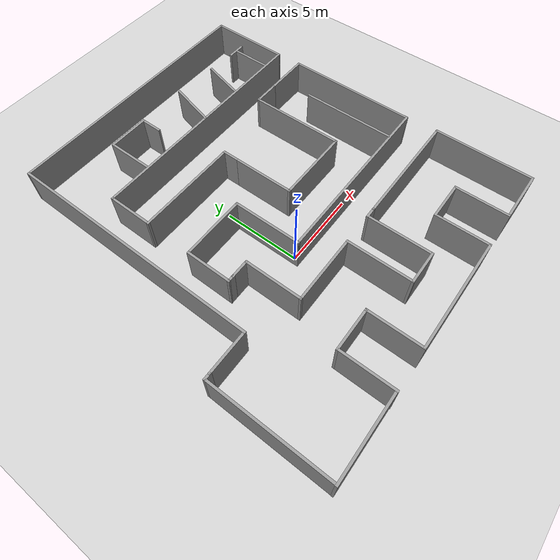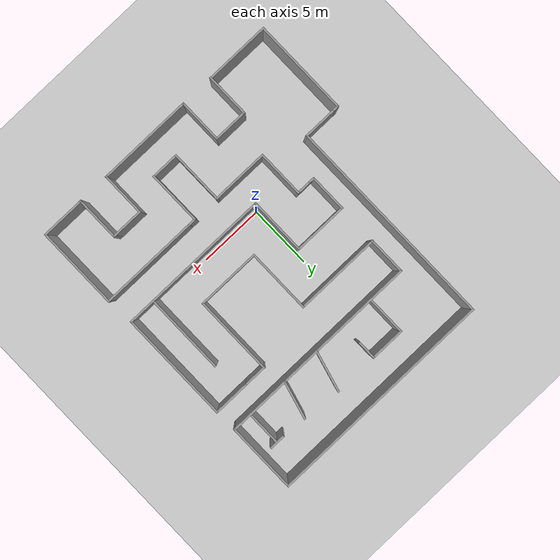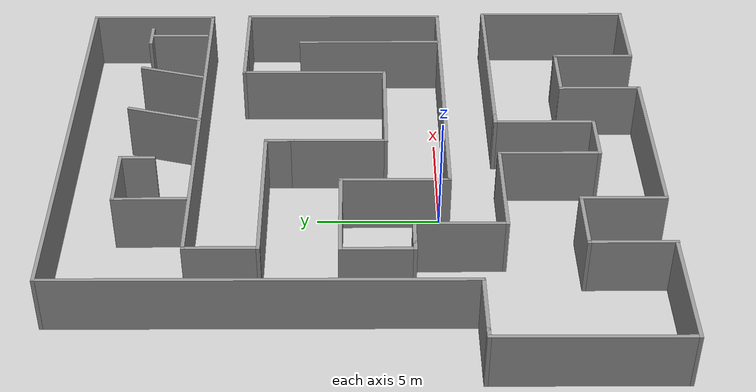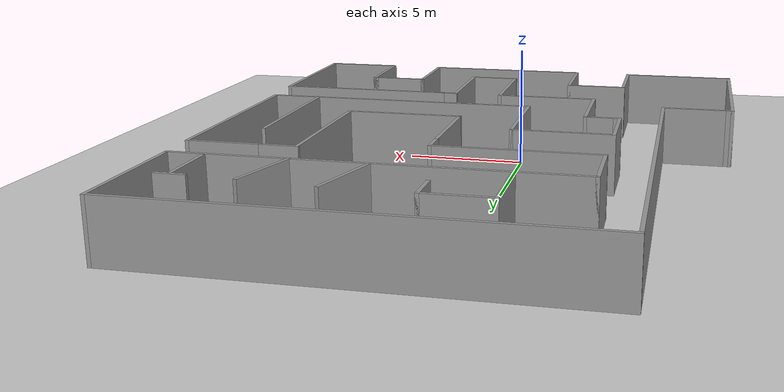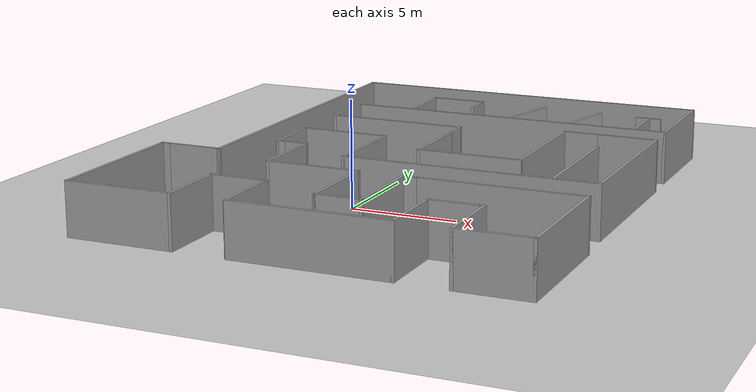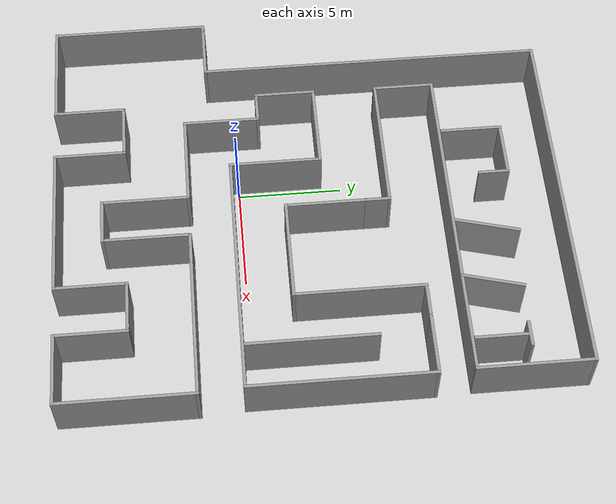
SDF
<sdf version="1.6">
 <world name="default">
  <plugin name="gazebo_occupancy_map" filename="libgazebo_2Dmap_plugin.so">
   <map_resolution>0.1</map_resolution>
   <map_height>0.3</map_height>
   <map_size_x>25</map_size_x>
   <map_size_y>25</map_size_y>
   <init_robot_x>0</init_robot_x>
   <init_robot_y>0</init_robot_y>
  </plugin>
  <light name="sun" type="directional">
   <pose>0 0 10 0 -0 0</pose>
   <diffuse>0.8 0.8 0.8 1</diffuse>
   <specular>0.2 0.2 0.2 1</specular>
   <attenuation>
    <range>1000</range>
    <constant>0.9</constant>
    <linear>0.01</linear>
    <quadratic>0.001</quadratic>
   </attenuation>
   <direction>-0.5 0.1 -0.9</direction>
  </light>
  <model name="ground_plane">
   <static>1</static>
   <link name="link">
    <collision name="collision">
     <geometry><plane><normal>0 0 1</normal><size>100 100</size></plane></geometry>
     <surface><friction><ode><mu>100</mu><mu2>50</mu2></ode></friction></surface>
    </collision>
    <visual name="visual">
     <cast_shadows>0</cast_shadows>
     <geometry><plane><normal>0 0 1</normal><size>100 100</size></plane></geometry>
     <material>
      <script><uri>file://media/materials/scripts/gazebo.material</uri><name>Gazebo/Grey</name></script>
     </material>
    </visual>
   </link>
  </model>
  <gravity>0 0 -9.8</gravity>
  <magnetic_field>6e-06 2.3e-05 -4.2e-05</magnetic_field>
  <atmosphere type="adiabatic"/>
  <physics name="default_physics" default="0" type="ode">
   <max_step_size>0.001</max_step_size>
   <real_time_factor>1</real_time_factor>
   <real_time_update_rate>1000</real_time_update_rate>
  </physics>
  <scene><ambient>0.4 0.4 0.4 1</ambient><background>0.7 0.7 0.7 1</background><shadows>1</shadows></scene>
  <audio><device>default</device></audio>
  <spherical_coordinates>
   <surface_model>EARTH_WGS84</surface_model>
   <latitude_deg>0</latitude_deg>
   <longitude_deg>0</longitude_deg>
   <elevation>0</elevation>
   <heading_deg>0</heading_deg>
  </spherical_coordinates>
  <model name="narrow">
   <pose>1.3601 3.26352 0 0 -0 0</pose>
   <link name="Wall_0">
    <collision name="Wall_0_Collision">
     <geometry><box><size>5.05 0.15 2.5</size></box></geometry>
     <pose>0 0 1.25 0 -0 0</pose>
    </collision>
    <visual name="Wall_0_Visual">
     <pose>0 0 1.25 0 -0 0</pose>
     <geometry><box><size>5.05 0.15 2.5</size></box></geometry>
     <material>
      <script><uri>file://media/materials/scripts/gazebo.material</uri><name>Gazebo/Grey</name></script>
      <ambient>1 1 1 1</ambient>
     </material>
     <meta><layer>0</layer></meta>
    </visual>
    <pose>-7.9311 -12.0265 0 0 -0 0</pose>
   </link>
   <link name="Wall_10">
    <collision name="Wall_10_Collision">
     <geometry><box><size>3.5 0.15 2.5</size></box></geometry>
     <pose>0 0 1.25 0 -0 0</pose>
    </collision>
    <visual name="Wall_10_Visual">
     <pose>0 0 1.25 0 -0 0</pose>
     <geometry><box><size>3.5 0.15 2.5</size></box></geometry>
     <material>
      <script><uri>file://media/materials/scripts/gazebo.material</uri><name>Gazebo/Grey</name></script>
      <ambient>1 1 1 1</ambient>
     </material>
     <meta><layer>0</layer></meta>
    </visual>
    <pose>8.7061 -12.05 0 0 -0 0</pose>
   </link>
   <link name="Wall_11">
    <collision name="Wall_11_Collision">
     <geometry><box><size>6.5 0.15 2.5</size></box></geometry>
     <pose>0 0 1.25 0 -0 0</pose>
    </collision>
    <visual name="Wall_11_Visual">
     <pose>0 0 1.25 0 -0 0</pose>
     <geometry><box><size>6.5 0.15 2.5</size></box></geometry>
     <material>
      <script><uri>file://media/materials/scripts/gazebo.material</uri><name>Gazebo/Grey</name></script>
      <ambient>1 1 1 1</ambient>
     </material>
     <meta><layer>0</layer></meta>
    </visual>
    <pose>10.3811 -8.875 0 0 -0 1.5708</pose>
   </link>
   <link name="Wall_12">
    <collision name="Wall_12_Collision">
     <geometry><box><size>7.75 0.15 2.5</size></box></geometry>
     <pose>0 0 1.25 0 -0 0</pose>
    </collision>
    <visual name="Wall_12_Visual">
     <pose>0 0 1.25 0 -0 0</pose>
     <geometry><box><size>7.75 0.15 2.5</size></box></geometry>
     <material>
      <script><uri>file://media/materials/scripts/gazebo.material</uri><name>Gazebo/Grey</name></script>
      <ambient>1 1 1 1</ambient>
     </material>
     <meta><layer>0</layer></meta>
    </visual>
    <pose>6.5811 -5.7 0 0 -0 3.14159</pose>
   </link>
   <link name="Wall_13">
    <collision name="Wall_13_Collision">
     <geometry><box><size>0.75 0.15 2.5</size></box></geometry>
     <pose>0 0 1.25 0 -0 0</pose>
    </collision>
    <visual name="Wall_13_Visual">
     <pose>0 0 1.25 0 -0 0</pose>
     <geometry><box><size>0.75 0.15 2.5</size></box></geometry>
     <material>
      <script><uri>file://media/materials/scripts/gazebo.material</uri><name>Gazebo/Grey</name></script>
      <ambient>1 1 1 1</ambient>
     </material>
     <meta><layer>0</layer></meta>
    </visual>
    <pose>2.4811 -5.7 0 0 -0 3.14159</pose>
   </link>
   <link name="Wall_14">
    <collision name="Wall_14_Collision">
     <geometry><box><size>4.25 0.15 2.5</size></box></geometry>
     <pose>0 0 1.25 0 -0 0</pose>
    </collision>
    <visual name="Wall_14_Visual">
     <pose>0 0 1.25 0 -0 0</pose>
     <geometry><box><size>4.25 0.15 2.5</size></box></geometry>
     <material>
      <script><uri>file://media/materials/scripts/gazebo.material</uri><name>Gazebo/Grey</name></script>
      <ambient>1 1 1 1</ambient>
     </material>
     <meta><layer>0</layer></meta>
    </visual>
    <pose>2.1811 -7.75 0 0 -0 -1.5708</pose>
   </link>
   <link name="Wall_15">
    <collision name="Wall_15_Collision">
     <geometry><box><size>2.25 0.15 2.5</size></box></geometry>
     <pose>0 0 1.25 0 -0 0</pose>
    </collision>
    <visual name="Wall_15_Visual">
     <pose>0 0 1.25 0 -0 0</pose>
     <geometry><box><size>2.25 0.15 2.5</size></box></geometry>
     <material>
      <script><uri>file://media/materials/scripts/gazebo.material</uri><name>Gazebo/Grey</name></script>
      <ambient>1 1 1 1</ambient>
     </material>
     <meta><layer>0</layer></meta>
    </visual>
    <pose>1.1311 -9.8 0 0 -0 3.14159</pose>
   </link>
   <link name="Wall_16">
    <collision name="Wall_16_Collision">
     <geometry><box><size>4.25 0.15 2.5</size></box></geometry>
     <pose>0 0 1.25 0 -0 0</pose>
    </collision>
    <visual name="Wall_16_Visual">
     <pose>0 0 1.25 0 -0 0</pose>
     <geometry><box><size>4.25 0.15 2.5</size></box></geometry>
     <material>
      <script><uri>file://media/materials/scripts/gazebo.material</uri><name>Gazebo/Grey</name></script>
      <ambient>1 1 1 1</ambient>
     </material>
     <meta><layer>0</layer></meta>
    </visual>
    <pose>0.081096 -7.75 0 0 -0 1.5708</pose>
   </link>
   <link name="Wall_17">
    <collision name="Wall_17_Collision">
     <geometry><box><size>4.5 0.15 2.5</size></box></geometry>
     <pose>0 0 1.25 0 -0 0</pose>
    </collision>
    <visual name="Wall_17_Visual">
     <pose>0 0 1.25 0 -0 0</pose>
     <geometry><box><size>4.5 0.15 2.5</size></box></geometry>
     <material>
      <script><uri>file://media/materials/scripts/gazebo.material</uri><name>Gazebo/Grey</name></script>
      <ambient>1 1 1 1</ambient>
     </material>
     <meta><layer>0</layer></meta>
    </visual>
    <pose>-2.0939 -5.7 0 0 -0 3.14159</pose>
   </link>
   <link name="Wall_18">
    <collision name="Wall_18_Collision">
     <geometry><box><size>3.75 0.15 2.5</size></box></geometry>
     <pose>0 0 1.25 0 -0 0</pose>
    </collision>
    <visual name="Wall_18_Visual">
     <pose>0 0 1.25 0 -0 0</pose>
     <geometry><box><size>3.75 0.15 2.5</size></box></geometry>
     <material>
      <script><uri>file://media/materials/scripts/gazebo.material</uri><name>Gazebo/Grey</name></script>
      <ambient>1 1 1 1</ambient>
     </material>
     <meta><layer>0</layer></meta>
    </visual>
    <pose>-4.2689 -3.9 0 0 -0 1.5708</pose>
   </link>
   <link name="Wall_19">
    <collision name="Wall_19_Collision">
     <geometry><box><size>1.25 0.15 2.5</size></box></geometry>
     <pose>0 0 1.25 0 -0 0</pose>
    </collision>
    <visual name="Wall_19_Visual">
     <pose>0 0 1.25 0 -0 0</pose>
     <geometry><box><size>1.25 0.15 2.5</size></box></geometry>
     <material>
      <script><uri>file://media/materials/scripts/gazebo.material</uri><name>Gazebo/Grey</name></script>
      <ambient>1 1 1 1</ambient>
     </material>
     <meta><layer>0</layer></meta>
    </visual>
    <pose>-4.8189 -2.1 0 0 -0 3.14159</pose>
   </link>
   <link name="Wall_20">
    <collision name="Wall_20_Collision">
     <geometry><box><size>0.5 0.15 2.5</size></box></geometry>
     <pose>0 0 1.25 0 -0 0</pose>
    </collision>
    <visual name="Wall_20_Visual">
     <pose>0 0 1.25 0 -0 0</pose>
     <geometry><box><size>0.5 0.15 2.5</size></box></geometry>
     <material>
      <script><uri>file://media/materials/scripts/gazebo.material</uri><name>Gazebo/Grey</name></script>
      <ambient>1 1 1 1</ambient>
     </material>
     <meta><layer>0</layer></meta>
    </visual>
    <pose>-5.5439 -2.1 0 0 -0 3.14159</pose>
   </link>
   <link name="Wall_21">
    <collision name="Wall_21_Collision">
     <geometry><box><size>3 0.15 2.5</size></box></geometry>
     <pose>0 0 1.25 0 -0 0</pose>
    </collision>
    <visual name="Wall_21_Visual">
     <pose>0 0 1.25 0 -0 0</pose>
     <geometry><box><size>3 0.15 2.5</size></box></geometry>
     <material>
      <script><uri>file://media/materials/scripts/gazebo.material</uri><name>Gazebo/Grey</name></script>
      <ambient>1 1 1 1</ambient>
     </material>
     <meta><layer>0</layer></meta>
    </visual>
    <pose>-5.7189 -0.675 0 0 -0 1.5708</pose>
   </link>
   <link name="Wall_23">
    <collision name="Wall_23_Collision">
     <geometry><box><size>4.25 0.15 2.5</size></box></geometry>
     <pose>0 0 1.25 0 -0 0</pose>
    </collision>
    <visual name="Wall_23_Visual">
     <pose>0 0 1.25 0 -0 0</pose>
     <geometry><box><size>4.25 0.15 2.5</size></box></geometry>
     <material>
      <script><uri>file://media/materials/scripts/gazebo.material</uri><name>Gazebo/Grey</name></script>
      <ambient>1 1 1 1</ambient>
     </material>
     <meta><layer>0</layer></meta>
    </visual>
    <pose>-3.6689 0.75 0 0 -0 0</pose>
   </link>
   <link name="Wall_24">
    <collision name="Wall_24_Collision">
     <geometry><box><size>4.5 0.15 2.5</size></box></geometry>
     <pose>0 0 1.25 0 -0 0</pose>
    </collision>
    <visual name="Wall_24_Visual">
     <pose>0 0 1.25 0 -0 0</pose>
     <geometry><box><size>4.5 0.15 2.5</size></box></geometry>
     <material>
      <script><uri>file://media/materials/scripts/gazebo.material</uri><name>Gazebo/Grey</name></script>
      <ambient>1 1 1 1</ambient>
     </material>
     <meta><layer>0</layer></meta>
    </visual>
    <pose>-1.6189 -1.425 0 0 -0 -1.5708</pose>
   </link>
   <link name="Wall_25">
    <collision name="Wall_25_Collision">
     <geometry><box><size>12 0.15 2.5</size></box></geometry>
     <pose>0 0 1.25 0 -0 0</pose>
    </collision>
    <visual name="Wall_25_Visual">
     <pose>0 0 1.25 0 -0 0</pose>
     <geometry><box><size>12 0.15 2.5</size></box></geometry>
     <material>
      <script><uri>file://media/materials/scripts/gazebo.material</uri><name>Gazebo/Grey</name></script>
      <ambient>1 1 1 1</ambient>
     </material>
     <meta><layer>0</layer></meta>
    </visual>
    <pose>4.3061 -3.6 0 0 -0 0</pose>
   </link>
   <link name="Wall_26">
    <collision name="Wall_26_Collision">
     <geometry><box><size>8.75 0.15 2.5</size></box></geometry>
     <pose>0 0 1.25 0 -0 0</pose>
    </collision>
    <visual name="Wall_26_Visual">
     <pose>0 0 1.25 0 -0 0</pose>
     <geometry><box><size>8.75 0.15 2.5</size></box></geometry>
     <material>
      <script><uri>file://media/materials/scripts/gazebo.material</uri><name>Gazebo/Grey</name></script>
      <ambient>1 1 1 1</ambient>
     </material>
     <meta><layer>0</layer></meta>
    </visual>
    <pose>10.2311 0.7 0 0 -0 1.5708</pose>
   </link>
   <link name="Wall_27">
    <collision name="Wall_27_Collision">
     <geometry><box><size>3 0.15 2.5</size></box></geometry>
     <pose>0 0 1.25 0 -0 0</pose>
    </collision>
    <visual name="Wall_27_Visual">
     <pose>0 0 1.25 0 -0 0</pose>
     <geometry><box><size>3 0.15 2.5</size></box></geometry>
     <material>
      <script><uri>file://media/materials/scripts/gazebo.material</uri><name>Gazebo/Grey</name></script>
      <ambient>1 1 1 1</ambient>
     </material>
     <meta><layer>0</layer></meta>
    </visual>
    <pose>8.8061 5 0 0 -0 3.14159</pose>
   </link>
   <link name="Wall_28">
    <collision name="Wall_28_Collision">
     <geometry><box><size>1.75 0.15 2.5</size></box></geometry>
     <pose>0 0 1.25 0 -0 0</pose>
    </collision>
    <visual name="Wall_28_Visual">
     <pose>0 0 1.25 0 -0 0</pose>
     <geometry><box><size>1.75 0.15 2.5</size></box></geometry>
     <material>
      <script><uri>file://media/materials/scripts/gazebo.material</uri><name>Gazebo/Grey</name></script>
      <ambient>1 1 1 1</ambient>
     </material>
     <meta><layer>0</layer></meta>
    </visual>
    <pose>6.5811 5 0 0 -0 3.14159</pose>
   </link>
   <link name="Wall_29">
    <collision name="Wall_29_Collision">
     <geometry><box><size>6.25 0.15 2.5</size></box></geometry>
     <pose>0 0 1.25 0 -0 0</pose>
    </collision>
    <visual name="Wall_29_Visual">
     <pose>0 0 1.25 0 -0 0</pose>
     <geometry><box><size>6.25 0.15 2.5</size></box></geometry>
     <material>
      <script><uri>file://media/materials/scripts/gazebo.material</uri><name>Gazebo/Grey</name></script>
      <ambient>1 1 1 1</ambient>
     </material>
     <meta><layer>0</layer></meta>
    </visual>
    <pose>5.7811 1.95 0 0 -0 -1.5708</pose>
   </link>
   <link name="Wall_3">
    <collision name="Wall_3_Collision">
     <geometry><box><size>2.75 0.15 2.5</size></box></geometry>
     <pose>0 0 1.25 0 -0 0</pose>
    </collision>
    <visual name="Wall_3_Visual">
     <pose>0 0 1.25 0 -0 0</pose>
     <geometry><box><size>2.75 0.15 2.5</size></box></geometry>
     <material>
      <script><uri>file://media/materials/scripts/gazebo.material</uri><name>Gazebo/Grey</name></script>
      <ambient>1 1 1 1</ambient>
     </material>
     <meta><layer>0</layer></meta>
    </visual>
    <pose>-4.0689 -8.7 0 0 -0 0</pose>
   </link>
   <link name="Wall_30">
    <collision name="Wall_30_Collision">
     <geometry><box><size>5 0.15 2.5</size></box></geometry>
     <pose>0 0 1.25 0 -0 0</pose>
    </collision>
    <visual name="Wall_30_Visual">
     <pose>0 0 1.25 0 -0 0</pose>
     <geometry><box><size>5 0.15 2.5</size></box></geometry>
     <material>
      <script><uri>file://media/materials/scripts/gazebo.material</uri><name>Gazebo/Grey</name></script>
      <ambient>1 1 1 1</ambient>
     </material>
     <meta><layer>0</layer></meta>
    </visual>
    <pose>3.3561 -1.1 0 0 -0 3.14159</pose>
   </link>
   <link name="Wall_31">
    <collision name="Wall_31_Collision">
     <geometry><box><size>4 0.15 2.5</size></box></geometry>
     <pose>0 0 1.25 0 -0 0</pose>
    </collision>
    <visual name="Wall_31_Visual">
     <pose>0 0 1.25 0 -0 0</pose>
     <geometry><box><size>4 0.15 2.5</size></box></geometry>
     <material>
      <script><uri>file://media/materials/scripts/gazebo.material</uri><name>Gazebo/Grey</name></script>
      <ambient>1 1 1 1</ambient>
     </material>
     <meta><layer>0</layer></meta>
    </visual>
    <pose>0.931096 0.824999 0 0 -0 1.5708</pose>
   </link>
   <link name="Wall_32">
    <collision name="Wall_32_Collision">
     <geometry><box><size>1.25 0.15 2.5</size></box></geometry>
     <pose>0 0 1.25 0 -0 0</pose>
    </collision>
    <visual name="Wall_32_Visual">
     <pose>0 0 1.25 0 -0 0</pose>
     <geometry><box><size>1.25 0.15 2.5</size></box></geometry>
     <material>
      <script><uri>file://media/materials/scripts/gazebo.material</uri><name>Gazebo/Grey</name></script>
      <ambient>1 1 1 1</ambient>
     </material>
     <meta><layer>0</layer></meta>
    </visual>
    <pose>0.931096 3.3 0 0 -0 1.5708</pose>
   </link>
   <link name="Wall_33">
    <collision name="Wall_33_Collision">
     <geometry><box><size>6.75 0.15 2.5</size></box></geometry>
     <pose>0 0 1.25 0 -0 0</pose>
    </collision>
    <visual name="Wall_33_Visual">
     <pose>0 0 1.25 0 -0 0</pose>
     <geometry><box><size>6.75 0.15 2.5</size></box></geometry>
     <material>
      <script><uri>file://media/materials/scripts/gazebo.material</uri><name>Gazebo/Grey</name></script>
      <ambient>1 1 1 1</ambient>
     </material>
     <meta><layer>0</layer></meta>
    </visual>
    <pose>-2.3689 3.85 0 0 -0 3.14159</pose>
   </link>
   <link name="Wall_34">
    <collision name="Wall_34_Collision">
     <geometry><box><size>3 0.15 2.5</size></box></geometry>
     <pose>0 0 1.25 0 -0 0</pose>
    </collision>
    <visual name="Wall_34_Visual">
     <pose>0 0 1.25 0 -0 0</pose>
     <geometry><box><size>3 0.15 2.5</size></box></geometry>
     <material>
      <script><uri>file://media/materials/scripts/gazebo.material</uri><name>Gazebo/Grey</name></script>
      <ambient>1 1 1 1</ambient>
     </material>
     <meta><layer>0</layer></meta>
    </visual>
    <pose>-5.6689 5.275 0 0 -0 1.5708</pose>
   </link>
   <link name="Wall_36">
    <collision name="Wall_36_Collision">
     <geometry><box><size>16 0.15 2.5</size></box></geometry>
     <pose>0 0 1.25 0 -0 0</pose>
    </collision>
    <visual name="Wall_36_Visual">
     <pose>0 0 1.25 0 -0 0</pose>
     <geometry><box><size>16 0.15 2.5</size></box></geometry>
     <material>
      <script><uri>file://media/materials/scripts/gazebo.material</uri><name>Gazebo/Grey</name></script>
      <ambient>1 1 1 1</ambient>
     </material>
     <meta><layer>0</layer></meta>
    </visual>
    <pose>2.2561 6.7 0 0 -0 0</pose>
   </link>
   <link name="Wall_39">
    <collision name="Wall_39_Collision">
     <geometry><box><size>5.5 0.15 2.5</size></box></geometry>
     <pose>0 0 1.25 0 -0 0</pose>
    </collision>
    <visual name="Wall_39_Visual">
     <pose>0 0 1.25 0 -0 0</pose>
     <geometry><box><size>5.5 0.15 2.5</size></box></geometry>
     <material>
      <script><uri>file://media/materials/scripts/gazebo.material</uri><name>Gazebo/Grey</name></script>
      <ambient>1 1 1 1</ambient>
     </material>
     <meta><layer>0</layer></meta>
    </visual>
    <pose>10.1811 9.375 0 0 -0 1.5708</pose>
   </link>
   <link name="Wall_4">
    <collision name="Wall_4_Collision">
     <geometry><box><size>3.5 0.15 2.5</size></box></geometry>
     <pose>0 0 1.25 0 -0 0</pose>
    </collision>
    <visual name="Wall_4_Visual">
     <pose>0 0 1.25 0 -0 0</pose>
     <geometry><box><size>3.5 0.15 2.5</size></box></geometry>
     <material>
      <script><uri>file://media/materials/scripts/gazebo.material</uri><name>Gazebo/Grey</name></script>
      <ambient>1 1 1 1</ambient>
     </material>
     <meta><layer>0</layer></meta>
    </visual>
    <pose>-2.7689 -10.375 0 0 -0 -1.5708</pose>
   </link>
   <link name="Wall_40">
    <collision name="Wall_40_Collision">
     <geometry><box><size>17.75 0.15 2.5</size></box></geometry>
     <pose>0 0 1.25 0 -0 0</pose>
    </collision>
    <visual name="Wall_40_Visual">
     <pose>0 0 1.25 0 -0 0</pose>
     <geometry><box><size>17.75 0.15 2.5</size></box></geometry>
     <material>
      <script><uri>file://media/materials/scripts/gazebo.material</uri><name>Gazebo/Grey</name></script>
      <ambient>1 1 1 1</ambient>
     </material>
     <meta><layer>0</layer></meta>
    </visual>
    <pose>1.3811 12.05 0 0 -0 3.14159</pose>
   </link>
   <link name="Wall_41">
    <collision name="Wall_41_Collision">
     <geometry><box><size>16.75 0.15 2.5</size></box></geometry>
     <pose>0 0 1.25 0 -0 0</pose>
    </collision>
    <visual name="Wall_41_Visual">
     <pose>0 0 1.25 0 -0 0</pose>
     <geometry><box><size>16.75 0.15 2.5</size></box></geometry>
     <material>
      <script><uri>file://media/materials/scripts/gazebo.material</uri><name>Gazebo/Grey</name></script>
      <ambient>1 1 1 1</ambient>
     </material>
     <meta><layer>0</layer></meta>
    </visual>
    <pose>-7.4189 3.75 0 0 -0 -1.5708</pose>
   </link>
   <link name="Wall_45">
    <collision name="Wall_45_Collision">
     <geometry><box><size>2.75 0.15 2.5</size></box></geometry>
     <pose>0 0 1.25 0 -0 0</pose>
    </collision>
    <visual name="Wall_45_Visual">
     <pose>0 0 1.25 0 -0 0</pose>
     <geometry><box><size>2.75 0.15 2.5</size></box></geometry>
     <material>
      <script><uri>file://media/materials/scripts/gazebo.material</uri><name>Gazebo/Grey</name></script>
      <ambient>1 1 1 1</ambient>
     </material>
     <meta><layer>0</layer></meta>
    </visual>
    <pose>-8.7189 -4.55 0 0 -0 3.14159</pose>
   </link>
   <link name="Wall_46">
    <collision name="Wall_46_Collision">
     <geometry><box><size>0.5 0.15 2.5</size></box></geometry>
     <pose>0 0 1.25 0 -0 0</pose>
    </collision>
    <visual name="Wall_46_Visual">
     <pose>0 0 1.25 0 -0 0</pose>
     <geometry><box><size>0.5 0.15 2.5</size></box></geometry>
     <material>
      <script><uri>file://media/materials/scripts/gazebo.material</uri><name>Gazebo/Grey</name></script>
      <ambient>1 1 1 1</ambient>
     </material>
     <meta><layer>0</layer></meta>
    </visual>
    <pose>-10.1939 -4.55 0 0 -0 3.14159</pose>
   </link>
   <link name="Wall_47">
    <collision name="Wall_47_Collision">
     <geometry><box><size>7.5 0.15 2.5</size></box></geometry>
     <pose>0 0 1.25 0 -0 0</pose>
    </collision>
    <visual name="Wall_47_Visual">
     <pose>0 0 1.25 0 -0 0</pose>
     <geometry><box><size>7.5 0.15 2.5</size></box></geometry>
     <material>
      <script><uri>file://media/materials/scripts/gazebo.material</uri><name>Gazebo/Grey</name></script>
      <ambient>1 1 1 1</ambient>
     </material>
     <meta><layer>0</layer></meta>
    </visual>
    <pose>-10.3689 -8.225 0 0 -0 -1.5708</pose>
   </link>
   <link name="Wall_49">
    <collision name="Wall_49_Collision">
     <geometry><box><size>3.5 0.15 2.5</size></box></geometry>
     <pose>0 0 1.25 0 -0 0</pose>
    </collision>
    <visual name="Wall_49_Visual">
     <pose>0 0 1.25 0 -0 0</pose>
     <geometry><box><size>3.5 0.15 2.5</size></box></geometry>
     <material>
      <script><uri>file://media/materials/scripts/gazebo.material</uri><name>Gazebo/Grey</name></script>
      <ambient>1 1 1 1</ambient>
     </material>
     <meta><layer>0</layer></meta>
    </visual>
    <pose>-5.3689 -10.375 0 0 -0 -1.5708</pose>
   </link>
   <link name="Wall_5">
    <collision name="Wall_5_Collision">
     <geometry><box><size>7.5 0.15 2.5</size></box></geometry>
     <pose>0 0 1.25 0 -0 0</pose>
    </collision>
    <visual name="Wall_5_Visual">
     <pose>0 0 1.25 0 -0 0</pose>
     <geometry><box><size>7.5 0.15 2.5</size></box></geometry>
     <material>
      <script><uri>file://media/materials/scripts/gazebo.material</uri><name>Gazebo/Grey</name></script>
      <ambient>1 1 1 1</ambient>
     </material>
     <meta><layer>0</layer></meta>
    </visual>
    <pose>0.906096 -12.05 0 0 -0 0</pose>
   </link>
   <link name="Wall_51">
    <collision name="Wall_51_Collision">
     <geometry><box><size>3 0.15 2.5</size></box></geometry>
     <pose>0 0 1.25 0 -0 0</pose>
    </collision>
    <visual name="Wall_51_Visual">
     <pose>0 0 1.25 0 -0 0</pose>
     <geometry><box><size>3 0.15 2.5</size></box></geometry>
     <material>
      <script><uri>file://media/materials/scripts/gazebo.material</uri><name>Gazebo/Grey</name></script>
      <ambient>1 1 1 1</ambient>
     </material>
     <meta><layer>0</layer></meta>
    </visual>
    <pose>-2.78482 8.28907 0 0 -0 1.5708</pose>
   </link>
   <link name="Wall_52">
    <collision name="Wall_52_Collision">
     <geometry><box><size>2.75 0.15 2.5</size></box></geometry>
     <pose>0 0 1.25 0 -0 0</pose>
    </collision>
    <visual name="Wall_52_Visual">
     <pose>0 0 1.25 0 -0 0</pose>
     <geometry><box><size>2.75 0.15 2.5</size></box></geometry>
     <material>
      <script><uri>file://media/materials/scripts/gazebo.material</uri><name>Gazebo/Grey</name></script>
      <ambient>1 1 1 1</ambient>
     </material>
     <meta><layer>0</layer></meta>
    </visual>
    <pose>-1.48482 9.71407 0 0 -0 0</pose>
   </link>
   <link name="Wall_53">
    <collision name="Wall_53_Collision">
     <geometry><box><size>1.5 0.15 2.5</size></box></geometry>
     <pose>0 0 1.25 0 -0 0</pose>
    </collision>
    <visual name="Wall_53_Visual">
     <pose>0 0 1.25 0 -0 0</pose>
     <geometry><box><size>1.5 0.15 2.5</size></box></geometry>
     <material>
      <script><uri>file://media/materials/scripts/gazebo.material</uri><name>Gazebo/Grey</name></script>
      <ambient>1 1 1 1</ambient>
     </material>
     <meta><layer>0</layer></meta>
    </visual>
    <pose>-0.184818 9.03907 0 0 -0 -1.5708</pose>
   </link>
   <link name="Wall_55">
    <collision name="Wall_55_Collision">
     <geometry><box><size>3.25 0.15 2.5</size></box></geometry>
     <pose>0 0 1.25 0 -0 0</pose>
    </collision>
    <visual name="Wall_55_Visual">
     <pose>0 0 1.25 0 -0 0</pose>
     <geometry><box><size>3.25 0.15 2.5</size></box></geometry>
     <material>
      <script><uri>file://media/materials/scripts/gazebo.material</uri><name>Gazebo/Grey</name></script>
      <ambient>1 1 1 1</ambient>
     </material>
     <meta><layer>0</layer></meta>
    </visual>
    <pose>2.78162 8.21974 0 0 -0 1.309</pose>
   </link>
   <link name="Wall_57">
    <collision name="Wall_57_Collision">
     <geometry><box><size>3 0.15 2.5</size></box></geometry>
     <pose>0 0 1.25 0 -0 0</pose>
    </collision>
    <visual name="Wall_57_Visual">
     <pose>0 0 1.25 0 -0 0</pose>
     <geometry><box><size>3 0.15 2.5</size></box></geometry>
     <material>
      <script><uri>file://media/materials/scripts/gazebo.material</uri><name>Gazebo/Grey</name></script>
      <ambient>1 1 1 1</ambient>
     </material>
     <meta><layer>0</layer></meta>
    </visual>
    <pose>5.79182 8.099 0 0 -0 1.309</pose>
   </link>
   <link name="Wall_59">
    <collision name="Wall_59_Collision">
     <geometry><box><size>2.5 0.15 2.5</size></box></geometry>
     <pose>0 0 1.25 0 -0 0</pose>
    </collision>
    <visual name="Wall_59_Visual">
     <pose>0 0 1.25 0 -0 0</pose>
     <geometry><box><size>2.5 0.15 2.5</size></box></geometry>
     <material>
      <script><uri>file://media/materials/scripts/gazebo.material</uri><name>Gazebo/Grey</name></script>
      <ambient>1 1 1 1</ambient>
     </material>
     <meta><layer>0</layer></meta>
    </visual>
    <pose>8.67783 8.03907 0 0 -0 1.5708</pose>
   </link>
   <link name="Wall_6">
    <collision name="Wall_6_Collision">
     <geometry><box><size>3.5 0.15 2.5</size></box></geometry>
     <pose>0 0 1.25 0 -0 0</pose>
    </collision>
    <visual name="Wall_6_Visual">
     <pose>0 0 1.25 0 -0 0</pose>
     <geometry><box><size>3.5 0.15 2.5</size></box></geometry>
     <material>
      <script><uri>file://media/materials/scripts/gazebo.material</uri><name>Gazebo/Grey</name></script>
      <ambient>1 1 1 1</ambient>
     </material>
     <meta><layer>0</layer></meta>
    </visual>
    <pose>4.5811 -10.375 0 0 -0 1.5708</pose>
   </link>
   <link name="Wall_61">
    <collision name="Wall_61_Collision">
     <geometry><box><size>1.25 0.15 2.5</size></box></geometry>
     <pose>0 0 1.25 0 -0 0</pose>
    </collision>
    <visual name="Wall_61_Visual">
     <pose>0 0 1.25 0 -0 0</pose>
     <geometry><box><size>1.25 0.15 2.5</size></box></geometry>
     <material>
      <script><uri>file://media/materials/scripts/gazebo.material</uri><name>Gazebo/Grey</name></script>
      <ambient>1 1 1 1</ambient>
     </material>
     <meta><layer>0</layer></meta>
    </visual>
    <pose>8.65439 9.3432 0 0 -0 0</pose>
   </link>
   <link name="Wall_63">
    <collision name="Wall_63_Collision">
     <geometry><box><size>6.25 0.15 2.5</size></box></geometry>
     <pose>0 0 1.25 0 -0 0</pose>
    </collision>
    <visual name="Wall_63_Visual">
     <pose>0 0 1.25 0 -0 0</pose>
     <geometry><box><size>6.25 0.15 2.5</size></box></geometry>
     <material>
      <script><uri>file://media/materials/scripts/gazebo.material</uri><name>Gazebo/Grey</name></script>
      <ambient>1 1 1 1</ambient>
     </material>
     <meta><layer>0</layer></meta>
    </visual>
    <pose>8.14255 -0.471772 0 0 -0 1.5708</pose>
   </link>
   <link name="Wall_7">
    <collision name="Wall_7_Collision">
     <geometry><box><size>2.5 0.15 2.5</size></box></geometry>
     <pose>0 0 1.25 0 -0 0</pose>
    </collision>
    <visual name="Wall_7_Visual">
     <pose>0 0 1.25 0 -0 0</pose>
     <geometry><box><size>2.5 0.15 2.5</size></box></geometry>
     <material>
      <script><uri>file://media/materials/scripts/gazebo.material</uri><name>Gazebo/Grey</name></script>
      <ambient>1 1 1 1</ambient>
     </material>
     <meta><layer>0</layer></meta>
    </visual>
    <pose>5.7561 -8.7 0 0 -0 0</pose>
   </link>
   <link name="Wall_8">
    <collision name="Wall_8_Collision">
     <geometry><box><size>0.25 0.15 2.5</size></box></geometry>
     <pose>0 0 1.25 0 -0 0</pose>
    </collision>
    <visual name="Wall_8_Visual">
     <pose>0 0 1.25 0 -0 0</pose>
     <geometry><box><size>0.25 0.15 2.5</size></box></geometry>
     <material>
      <script><uri>file://media/materials/scripts/gazebo.material</uri><name>Gazebo/Grey</name></script>
      <ambient>1 1 1 1</ambient>
     </material>
     <meta><layer>0</layer></meta>
    </visual>
    <pose>6.9811 -8.7 0 0 -0 0</pose>
   </link>
   <link name="Wall_9">
    <collision name="Wall_9_Collision">
     <geometry><box><size>3.5 0.15 2.5</size></box></geometry>
     <pose>0 0 1.25 0 -0 0</pose>
    </collision>
    <visual name="Wall_9_Visual">
     <pose>0 0 1.25 0 -0 0</pose>
     <geometry><box><size>3.5 0.15 2.5</size></box></geometry>
     <material>
      <script><uri>file://media/materials/scripts/gazebo.material</uri><name>Gazebo/Grey</name></script>
      <ambient>1 1 1 1</ambient>
     </material>
     <meta><layer>0</layer></meta>
    </visual>
    <pose>7.0311 -10.375 0 0 -0 -1.5708</pose>
   </link>
   <static>1</static>
  </model>
 </world>
</sdf>
